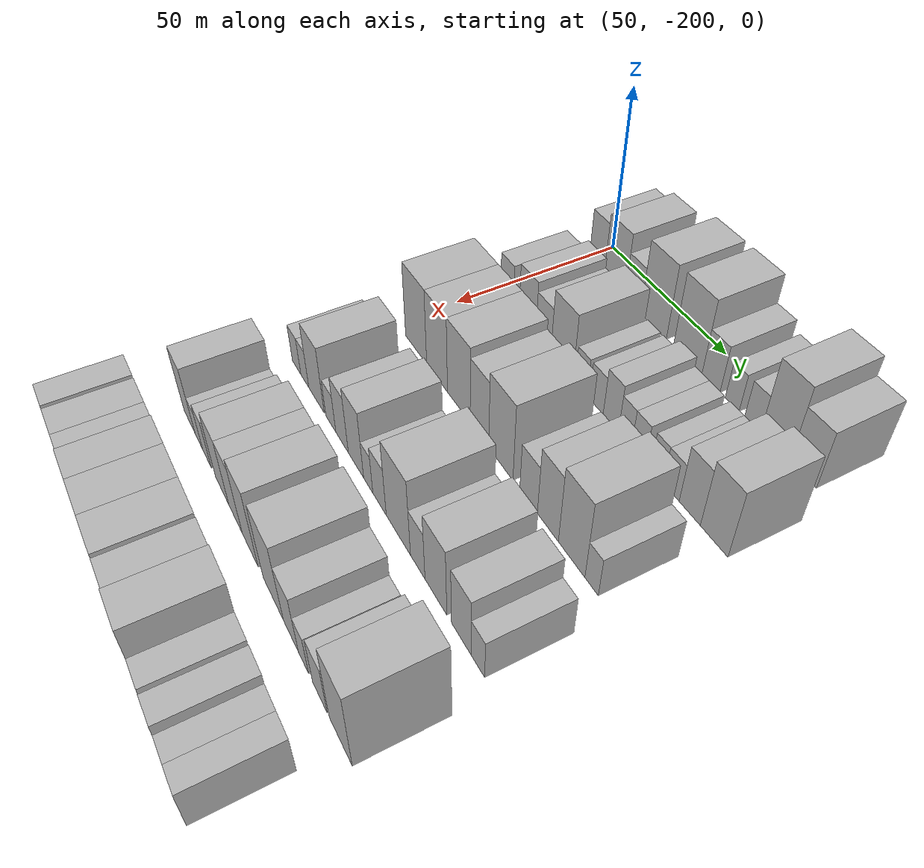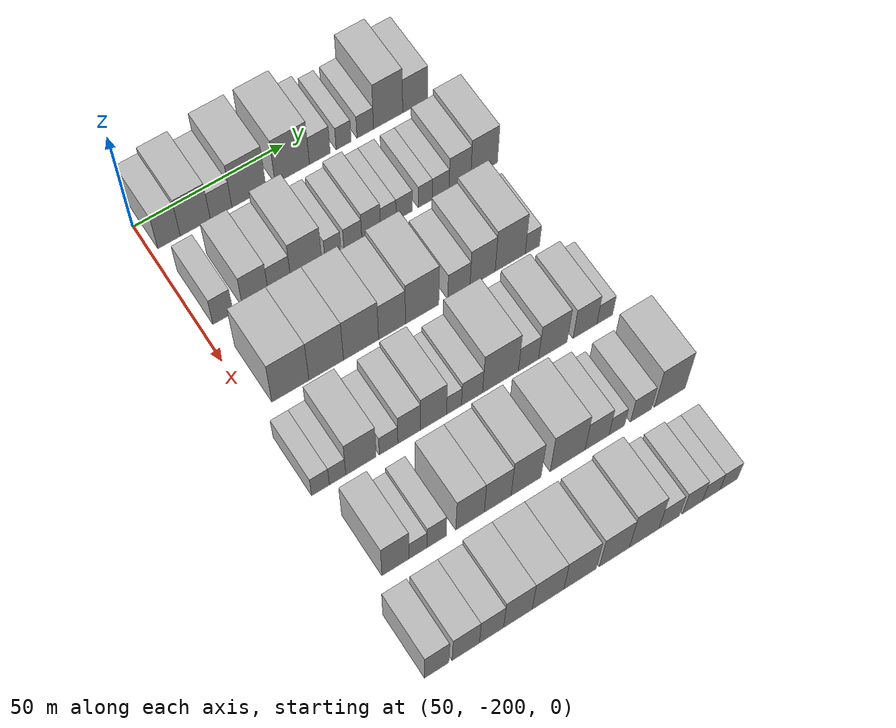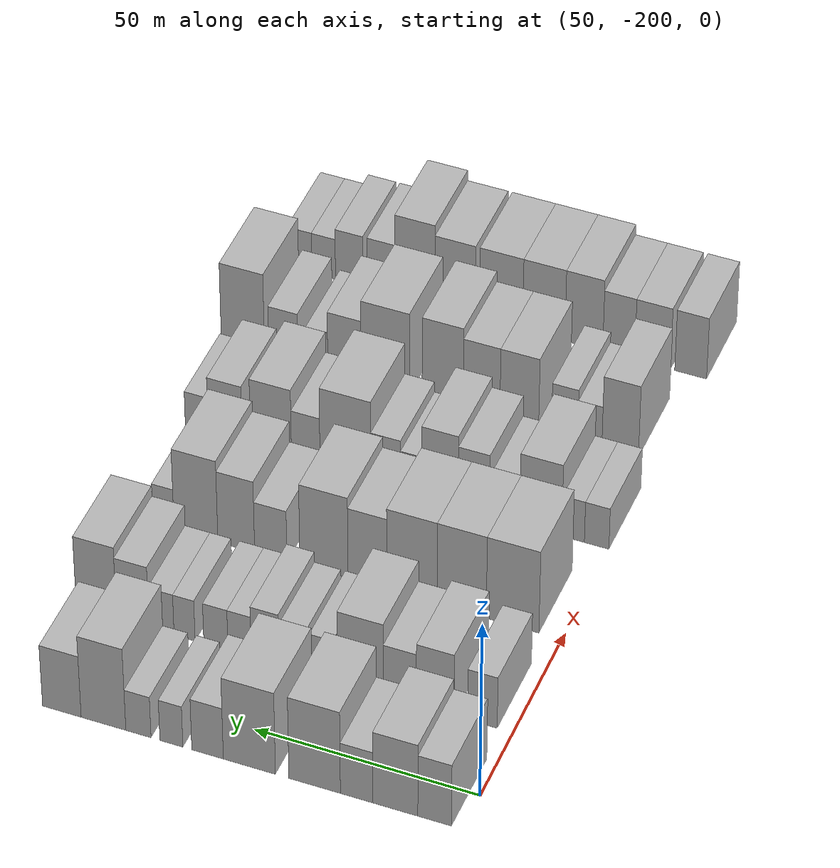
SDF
<sdf version="1.6">
 <world name="default">
  <model name="building_35">
   <static>1</static>
   <pose>50.0000 -193.9114 0 0.000000 0.000000 0.000000</pose>
   <link name="link">
    <pose>0 0 9.00 0 0 0</pose>
    <collision name="collision"><geometry><box><size>20.0000 7.3822 18.0000</size></box></geometry></collision>
    <visual name="visual">
     <cast_shadows>0</cast_shadows>
     <geometry><box><size>20.0000 7.3822 18.0000</size></box></geometry>
     <material>
      <script>
       <uri>model://HANNAS_wall/materials/scripts</uri>
       <uri>model://HANNAS_wall/materials/textures</uri>
       <name>vrc/HANNAS_wall</name>
      </script>
     </material>
    </visual>
   </link>
  </model>
  <model name="building_36">
   <static>1</static>
   <pose>50.0000 -185.2671 0 0.000000 0.000000 0.000000</pose>
   <link name="link">
    <pose>0 0 10.50 0 0 0</pose>
    <collision name="collision"><geometry><box><size>20.0000 9.9062 21.0000</size></box></geometry></collision>
    <visual name="visual">
     <cast_shadows>0</cast_shadows>
     <geometry><box><size>20.0000 9.9062 21.0000</size></box></geometry>
     <material>
      <script>
       <uri>model://HANNAS_wall/materials/scripts</uri>
       <uri>model://HANNAS_wall/materials/textures</uri>
       <name>vrc/HANNAS_wall</name>
      </script>
     </material>
    </visual>
   </link>
  </model>
  <model name="building_37">
   <static>1</static>
   <pose>50.0000 -176.7358 0 0.000000 0.000000 0.000000</pose>
   <link name="link">
    <pose>0 0 7.50 0 0 0</pose>
    <collision name="collision"><geometry><box><size>20.0000 7.1564 15.0000</size></box></geometry></collision>
    <visual name="visual">
     <cast_shadows>0</cast_shadows>
     <geometry><box><size>20.0000 7.1564 15.0000</size></box></geometry>
     <material>
      <script>
       <uri>model://HANNAS_wall/materials/scripts</uri>
       <uri>model://HANNAS_wall/materials/textures</uri>
       <name>vrc/HANNAS_wall</name>
      </script>
     </material>
    </visual>
   </link>
  </model>
  <model name="building_38">
   <static>1</static>
   <pose>50.0000 -167.4494 0 0.000000 0.000000 0.000000</pose>
   <link name="link">
    <pose>0 0 12.00 0 0 0</pose>
    <collision name="collision"><geometry><box><size>20.0000 11.4163 24.0000</size></box></geometry></collision>
    <visual name="visual">
     <cast_shadows>0</cast_shadows>
     <geometry><box><size>20.0000 11.4163 24.0000</size></box></geometry>
     <material>
      <script>
       <uri>model://HANNAS_wall/materials/scripts</uri>
       <uri>model://HANNAS_wall/materials/textures</uri>
       <name>vrc/HANNAS_wall</name>
      </script>
     </material>
    </visual>
   </link>
  </model>
  <model name="building_39">
   <static>1</static>
   <pose>50.0000 -152.9241 0 0.000000 0.000000 0.000000</pose>
   <link name="link">
    <pose>0 0 12.00 0 0 0</pose>
    <collision name="collision"><geometry><box><size>20.0000 11.6345 24.0000</size></box></geometry></collision>
    <visual name="visual">
     <cast_shadows>0</cast_shadows>
     <geometry><box><size>20.0000 11.6345 24.0000</size></box></geometry>
     <material>
      <script>
       <uri>model://HANNAS_wall/materials/scripts</uri>
       <uri>model://HANNAS_wall/materials/textures</uri>
       <name>vrc/HANNAS_wall</name>
      </script>
     </material>
    </visual>
   </link>
  </model>
  <model name="building_40">
   <static>1</static>
   <pose>50.0000 -143.5698 0 0.000000 0.000000 0.000000</pose>
   <link name="link">
    <pose>0 0 7.50 0 0 0</pose>
    <collision name="collision"><geometry><box><size>20.0000 7.0739 15.0000</size></box></geometry></collision>
    <visual name="visual">
     <cast_shadows>0</cast_shadows>
     <geometry><box><size>20.0000 7.0739 15.0000</size></box></geometry>
     <material>
      <script>
       <uri>model://HANNAS_wall/materials/scripts</uri>
       <uri>model://HANNAS_wall/materials/textures</uri>
       <name>vrc/HANNAS_wall</name>
      </script>
     </material>
    </visual>
   </link>
  </model>
  <model name="building_41">
   <static>1</static>
   <pose>50.0000 -135.4453 0 0.000000 0.000000 0.000000</pose>
   <link name="link">
    <pose>0 0 6.00 0 0 0</pose>
    <collision name="collision"><geometry><box><size>20.0000 5.1752 12.0000</size></box></geometry></collision>
    <visual name="visual">
     <cast_shadows>0</cast_shadows>
     <geometry><box><size>20.0000 5.1752 12.0000</size></box></geometry>
     <material>
      <script>
       <uri>model://HANNAS_wall/materials/scripts</uri>
       <uri>model://HANNAS_wall/materials/textures</uri>
       <name>vrc/HANNAS_wall</name>
      </script>
     </material>
    </visual>
   </link>
  </model>
  <model name="building_42">
   <static>1</static>
   <pose>50.0000 -128.0100 0 0.000000 0.000000 0.000000</pose>
   <link name="link">
    <pose>0 0 6.00 0 0 0</pose>
    <collision name="collision"><geometry><box><size>20.0000 5.6952 12.0000</size></box></geometry></collision>
    <visual name="visual">
     <cast_shadows>0</cast_shadows>
     <geometry><box><size>20.0000 5.6952 12.0000</size></box></geometry>
     <material>
      <script>
       <uri>model://HANNAS_wall/materials/scripts</uri>
       <uri>model://HANNAS_wall/materials/textures</uri>
       <name>vrc/HANNAS_wall</name>
      </script>
     </material>
    </visual>
   </link>
  </model>
  <model name="building_43">
   <static>1</static>
   <pose>50.0000 -120.1006 0 0.000000 0.000000 0.000000</pose>
   <link name="link">
    <pose>0 0 12.00 0 0 0</pose>
    <collision name="collision"><geometry><box><size>20.0000 10.1238 24.0000</size></box></geometry></collision>
    <visual name="visual">
     <cast_shadows>0</cast_shadows>
     <geometry><box><size>20.0000 10.1238 24.0000</size></box></geometry>
     <material>
      <script>
       <uri>model://HANNAS_wall/materials/scripts</uri>
       <uri>model://HANNAS_wall/materials/textures</uri>
       <name>vrc/HANNAS_wall</name>
      </script>
     </material>
    </visual>
   </link>
  </model>
  <model name="building_44">
   <static>1</static>
   <pose>50.0000 -110.6567 0 0.000000 0.000000 0.000000</pose>
   <link name="link">
    <pose>0 0 9.00 0 0 0</pose>
    <collision name="collision"><geometry><box><size>20.0000 8.7639 18.0000</size></box></geometry></collision>
    <visual name="visual">
     <cast_shadows>0</cast_shadows>
     <geometry><box><size>20.0000 8.7639 18.0000</size></box></geometry>
     <material>
      <script>
       <uri>model://HANNAS_wall/materials/scripts</uri>
       <uri>model://HANNAS_wall/materials/textures</uri>
       <name>vrc/HANNAS_wall</name>
      </script>
     </material>
    </visual>
   </link>
  </model>
  <model name="building_150">
   <static>1</static>
   <pose>79.0000 -193.1258 0 0.000000 0.000000 0.000000</pose>
   <link name="link">
    <pose>0 0 7.50 0 0 0</pose>
    <collision name="collision"><geometry><box><size>20.0000 6.6321 15.0000</size></box></geometry></collision>
    <visual name="visual">
     <cast_shadows>0</cast_shadows>
     <geometry><box><size>20.0000 6.6321 15.0000</size></box></geometry>
     <material>
      <script>
       <uri>model://HANNAS_wall/materials/scripts</uri>
       <uri>model://HANNAS_wall/materials/textures</uri>
       <name>vrc/HANNAS_wall</name>
      </script>
     </material>
    </visual>
   </link>
  </model>
  <model name="building_151">
   <static>1</static>
   <pose>79.0000 -182.6058 0 0.000000 0.000000 0.000000</pose>
   <link name="link">
    <pose>0 0 9.00 0 0 0</pose>
    <collision name="collision"><geometry><box><size>20.0000 8.4079 18.0000</size></box></geometry></collision>
    <visual name="visual">
     <cast_shadows>0</cast_shadows>
     <geometry><box><size>20.0000 8.4079 18.0000</size></box></geometry>
     <material>
      <script>
       <uri>model://HANNAS_wall/materials/scripts</uri>
       <uri>model://HANNAS_wall/materials/textures</uri>
       <name>vrc/HANNAS_wall</name>
      </script>
     </material>
    </visual>
   </link>
  </model>
  <model name="building_152">
   <static>1</static>
   <pose>79.0000 -174.7006 0 0.000000 0.000000 0.000000</pose>
   <link name="link">
    <pose>0 0 7.50 0 0 0</pose>
    <collision name="collision"><geometry><box><size>20.0000 7.4026 15.0000</size></box></geometry></collision>
    <visual name="visual">
     <cast_shadows>0</cast_shadows>
     <geometry><box><size>20.0000 7.4026 15.0000</size></box></geometry>
     <material>
      <script>
       <uri>model://HANNAS_wall/materials/scripts</uri>
       <uri>model://HANNAS_wall/materials/textures</uri>
       <name>vrc/HANNAS_wall</name>
      </script>
     </material>
    </visual>
   </link>
  </model>
  <model name="building_153">
   <static>1</static>
   <pose>79.0000 -165.8603 0 0.000000 0.000000 0.000000</pose>
   <link name="link">
    <pose>0 0 10.50 0 0 0</pose>
    <collision name="collision"><geometry><box><size>20.0000 10.2780 21.0000</size></box></geometry></collision>
    <visual name="visual">
     <cast_shadows>0</cast_shadows>
     <geometry><box><size>20.0000 10.2780 21.0000</size></box></geometry>
     <material>
      <script>
       <uri>model://HANNAS_wall/materials/scripts</uri>
       <uri>model://HANNAS_wall/materials/textures</uri>
       <name>vrc/HANNAS_wall</name>
      </script>
     </material>
    </visual>
   </link>
  </model>
  <model name="building_154">
   <static>1</static>
   <pose>79.0000 -157.0704 0 0.000000 0.000000 0.000000</pose>
   <link name="link">
    <pose>0 0 6.00 0 0 0</pose>
    <collision name="collision"><geometry><box><size>20.0000 5.3017 12.0000</size></box></geometry></collision>
    <visual name="visual">
     <cast_shadows>0</cast_shadows>
     <geometry><box><size>20.0000 5.3017 12.0000</size></box></geometry>
     <material>
      <script>
       <uri>model://HANNAS_wall/materials/scripts</uri>
       <uri>model://HANNAS_wall/materials/textures</uri>
       <name>vrc/HANNAS_wall</name>
      </script>
     </material>
    </visual>
   </link>
  </model>
  <model name="building_155">
   <static>1</static>
   <pose>79.0000 -150.4272 0 0.000000 0.000000 0.000000</pose>
   <link name="link">
    <pose>0 0 6.00 0 0 0</pose>
    <collision name="collision"><geometry><box><size>20.0000 5.9847 12.0000</size></box></geometry></collision>
    <visual name="visual">
     <cast_shadows>0</cast_shadows>
     <geometry><box><size>20.0000 5.9847 12.0000</size></box></geometry>
     <material>
      <script>
       <uri>model://HANNAS_wall/materials/scripts</uri>
       <uri>model://HANNAS_wall/materials/textures</uri>
       <name>vrc/HANNAS_wall</name>
      </script>
     </material>
    </visual>
   </link>
  </model>
  <model name="building_156">
   <static>1</static>
   <pose>79.0000 -144.2833 0 0.000000 0.000000 0.000000</pose>
   <link name="link">
    <pose>0 0 7.50 0 0 0</pose>
    <collision name="collision"><geometry><box><size>20.0000 6.3032 15.0000</size></box></geometry></collision>
    <visual name="visual">
     <cast_shadows>0</cast_shadows>
     <geometry><box><size>20.0000 6.3032 15.0000</size></box></geometry>
     <material>
      <script>
       <uri>model://HANNAS_wall/materials/scripts</uri>
       <uri>model://HANNAS_wall/materials/textures</uri>
       <name>vrc/HANNAS_wall</name>
      </script>
     </material>
    </visual>
   </link>
  </model>
  <model name="building_157">
   <static>1</static>
   <pose>79.0000 -138.4934 0 0.000000 0.000000 0.000000</pose>
   <link name="link">
    <pose>0 0 6.00 0 0 0</pose>
    <collision name="collision"><geometry><box><size>20.0000 5.2766 12.0000</size></box></geometry></collision>
    <visual name="visual">
     <cast_shadows>0</cast_shadows>
     <geometry><box><size>20.0000 5.2766 12.0000</size></box></geometry>
     <material>
      <script>
       <uri>model://HANNAS_wall/materials/scripts</uri>
       <uri>model://HANNAS_wall/materials/textures</uri>
       <name>vrc/HANNAS_wall</name>
      </script>
     </material>
    </visual>
   </link>
  </model>
  <model name="building_158">
   <static>1</static>
   <pose>79.0000 -133.0994 0 0.000000 0.000000 0.000000</pose>
   <link name="link">
    <pose>0 0 6.00 0 0 0</pose>
    <collision name="collision"><geometry><box><size>20.0000 5.5113 12.0000</size></box></geometry></collision>
    <visual name="visual">
     <cast_shadows>0</cast_shadows>
     <geometry><box><size>20.0000 5.5113 12.0000</size></box></geometry>
     <material>
      <script>
       <uri>model://HANNAS_wall/materials/scripts</uri>
       <uri>model://HANNAS_wall/materials/textures</uri>
       <name>vrc/HANNAS_wall</name>
      </script>
     </material>
    </visual>
   </link>
  </model>
  <model name="building_159">
   <static>1</static>
   <pose>79.0000 -125.9368 0 0.000000 0.000000 0.000000</pose>
   <link name="link">
    <pose>0 0 6.00 0 0 0</pose>
    <collision name="collision"><geometry><box><size>20.0000 4.8140 12.0000</size></box></geometry></collision>
    <visual name="visual">
     <cast_shadows>0</cast_shadows>
     <geometry><box><size>20.0000 4.8140 12.0000</size></box></geometry>
     <material>
      <script>
       <uri>model://HANNAS_wall/materials/scripts</uri>
       <uri>model://HANNAS_wall/materials/textures</uri>
       <name>vrc/HANNAS_wall</name>
      </script>
     </material>
    </visual>
   </link>
  </model>
  <model name="building_160">
   <static>1</static>
   <pose>79.0000 -120.6565 0 0.000000 0.000000 0.000000</pose>
   <link name="link">
    <pose>0 0 6.00 0 0 0</pose>
    <collision name="collision"><geometry><box><size>20.0000 5.7468 12.0000</size></box></geometry></collision>
    <visual name="visual">
     <cast_shadows>0</cast_shadows>
     <geometry><box><size>20.0000 5.7468 12.0000</size></box></geometry>
     <material>
      <script>
       <uri>model://HANNAS_wall/materials/scripts</uri>
       <uri>model://HANNAS_wall/materials/textures</uri>
       <name>vrc/HANNAS_wall</name>
      </script>
     </material>
    </visual>
   </link>
  </model>
  <model name="building_161">
   <static>1</static>
   <pose>79.0000 -114.0428 0 0.000000 0.000000 0.000000</pose>
   <link name="link">
    <pose>0 0 9.00 0 0 0</pose>
    <collision name="collision"><geometry><box><size>20.0000 7.4806 18.0000</size></box></geometry></collision>
    <visual name="visual">
     <cast_shadows>0</cast_shadows>
     <geometry><box><size>20.0000 7.4806 18.0000</size></box></geometry>
     <material>
      <script>
       <uri>model://HANNAS_wall/materials/scripts</uri>
       <uri>model://HANNAS_wall/materials/textures</uri>
       <name>vrc/HANNAS_wall</name>
      </script>
     </material>
    </visual>
   </link>
  </model>
  <model name="building_162">
   <static>1</static>
   <pose>79.0000 -105.6607 0 0.000000 0.000000 0.000000</pose>
   <link name="link">
    <pose>0 0 10.50 0 0 0</pose>
    <collision name="collision"><geometry><box><size>20.0000 9.2836 21.0000</size></box></geometry></collision>
    <visual name="visual">
     <cast_shadows>0</cast_shadows>
     <geometry><box><size>20.0000 9.2836 21.0000</size></box></geometry>
     <material>
      <script>
       <uri>model://HANNAS_wall/materials/scripts</uri>
       <uri>model://HANNAS_wall/materials/textures</uri>
       <name>vrc/HANNAS_wall</name>
      </script>
     </material>
    </visual>
   </link>
  </model>
  <model name="building_268">
   <static>1</static>
   <pose>108.0000 -188.7640 0 0.000000 0.000000 0.000000</pose>
   <link name="link">
    <pose>0 0 12.00 0 0 0</pose>
    <collision name="collision"><geometry><box><size>20.0000 11.9013 24.0000</size></box></geometry></collision>
    <visual name="visual">
     <cast_shadows>0</cast_shadows>
     <geometry><box><size>20.0000 11.9013 24.0000</size></box></geometry>
     <material>
      <script>
       <uri>model://HANNAS_wall/materials/scripts</uri>
       <uri>model://HANNAS_wall/materials/textures</uri>
       <name>vrc/HANNAS_wall</name>
      </script>
     </material>
    </visual>
   </link>
  </model>
  <model name="building_269">
   <static>1</static>
   <pose>108.0000 -177.2226 0 0.000000 0.000000 0.000000</pose>
   <link name="link">
    <pose>0 0 12.00 0 0 0</pose>
    <collision name="collision"><geometry><box><size>20.0000 11.1816 24.0000</size></box></geometry></collision>
    <visual name="visual">
     <cast_shadows>0</cast_shadows>
     <geometry><box><size>20.0000 11.1816 24.0000</size></box></geometry>
     <material>
      <script>
       <uri>model://HANNAS_wall/materials/scripts</uri>
       <uri>model://HANNAS_wall/materials/textures</uri>
       <name>vrc/HANNAS_wall</name>
      </script>
     </material>
    </visual>
   </link>
  </model>
  <model name="building_270">
   <static>1</static>
   <pose>108.0000 -165.9001 0 0.000000 0.000000 0.000000</pose>
   <link name="link">
    <pose>0 0 12.00 0 0 0</pose>
    <collision name="collision"><geometry><box><size>20.0000 11.4634 24.0000</size></box></geometry></collision>
    <visual name="visual">
     <cast_shadows>0</cast_shadows>
     <geometry><box><size>20.0000 11.4634 24.0000</size></box></geometry>
     <material>
      <script>
       <uri>model://HANNAS_wall/materials/scripts</uri>
       <uri>model://HANNAS_wall/materials/textures</uri>
       <name>vrc/HANNAS_wall</name>
      </script>
     </material>
    </visual>
   </link>
  </model>
  <model name="building_271">
   <static>1</static>
   <pose>108.0000 -155.7331 0 0.000000 0.000000 0.000000</pose>
   <link name="link">
    <pose>0 0 10.50 0 0 0</pose>
    <collision name="collision"><geometry><box><size>20.0000 8.8707 21.0000</size></box></geometry></collision>
    <visual name="visual">
     <cast_shadows>0</cast_shadows>
     <geometry><box><size>20.0000 8.8707 21.0000</size></box></geometry>
     <material>
      <script>
       <uri>model://HANNAS_wall/materials/scripts</uri>
       <uri>model://HANNAS_wall/materials/textures</uri>
       <name>vrc/HANNAS_wall</name>
      </script>
     </material>
    </visual>
   </link>
  </model>
  <model name="building_272">
   <static>1</static>
   <pose>108.0000 -145.7656 0 0.000000 0.000000 0.000000</pose>
   <link name="link">
    <pose>0 0 12.00 0 0 0</pose>
    <collision name="collision"><geometry><box><size>20.0000 11.0643 24.0000</size></box></geometry></collision>
    <visual name="visual">
     <cast_shadows>0</cast_shadows>
     <geometry><box><size>20.0000 11.0643 24.0000</size></box></geometry>
     <material>
      <script>
       <uri>model://HANNAS_wall/materials/scripts</uri>
       <uri>model://HANNAS_wall/materials/textures</uri>
       <name>vrc/HANNAS_wall</name>
      </script>
     </material>
    </visual>
   </link>
  </model>
  <model name="building_273">
   <static>1</static>
   <pose>108.0000 -133.4966 0 0.000000 0.000000 0.000000</pose>
   <link name="link">
    <pose>0 0 7.50 0 0 0</pose>
    <collision name="collision"><geometry><box><size>20.0000 7.4737 15.0000</size></box></geometry></collision>
    <visual name="visual">
     <cast_shadows>0</cast_shadows>
     <geometry><box><size>20.0000 7.4737 15.0000</size></box></geometry>
     <material>
      <script>
       <uri>model://HANNAS_wall/materials/scripts</uri>
       <uri>model://HANNAS_wall/materials/textures</uri>
       <name>vrc/HANNAS_wall</name>
      </script>
     </material>
    </visual>
   </link>
  </model>
  <model name="building_274">
   <static>1</static>
   <pose>108.0000 -125.4956 0 0.000000 0.000000 0.000000</pose>
   <link name="link">
    <pose>0 0 10.50 0 0 0</pose>
    <collision name="collision"><geometry><box><size>20.0000 8.5285 21.0000</size></box></geometry></collision>
    <visual name="visual">
     <cast_shadows>0</cast_shadows>
     <geometry><box><size>20.0000 8.5285 21.0000</size></box></geometry>
     <material>
      <script>
       <uri>model://HANNAS_wall/materials/scripts</uri>
       <uri>model://HANNAS_wall/materials/textures</uri>
       <name>vrc/HANNAS_wall</name>
      </script>
     </material>
    </visual>
   </link>
  </model>
  <model name="building_275">
   <static>1</static>
   <pose>108.0000 -116.1210 0 0.000000 0.000000 0.000000</pose>
   <link name="link">
    <pose>0 0 12.00 0 0 0</pose>
    <collision name="collision"><geometry><box><size>20.0000 10.2206 24.0000</size></box></geometry></collision>
    <visual name="visual">
     <cast_shadows>0</cast_shadows>
     <geometry><box><size>20.0000 10.2206 24.0000</size></box></geometry>
     <material>
      <script>
       <uri>model://HANNAS_wall/materials/scripts</uri>
       <uri>model://HANNAS_wall/materials/textures</uri>
       <name>vrc/HANNAS_wall</name>
      </script>
     </material>
    </visual>
   </link>
  </model>
  <model name="building_276">
   <static>1</static>
   <pose>108.0000 -108.5557 0 0.000000 0.000000 0.000000</pose>
   <link name="link">
    <pose>0 0 6.00 0 0 0</pose>
    <collision name="collision"><geometry><box><size>20.0000 4.9100 12.0000</size></box></geometry></collision>
    <visual name="visual">
     <cast_shadows>0</cast_shadows>
     <geometry><box><size>20.0000 4.9100 12.0000</size></box></geometry>
     <material>
      <script>
       <uri>model://HANNAS_wall/materials/scripts</uri>
       <uri>model://HANNAS_wall/materials/textures</uri>
       <name>vrc/HANNAS_wall</name>
      </script>
     </material>
    </visual>
   </link>
  </model>
  <model name="building_383">
   <static>1</static>
   <pose>137.0000 -196.9503 0 0.000000 0.000000 0.000000</pose>
   <link name="link">
    <pose>0 0 6.00 0 0 0</pose>
    <collision name="collision"><geometry><box><size>20.0000 5.5994 12.0000</size></box></geometry></collision>
    <visual name="visual">
     <cast_shadows>0</cast_shadows>
     <geometry><box><size>20.0000 5.5994 12.0000</size></box></geometry>
     <material>
      <script>
       <uri>model://HANNAS_wall/materials/scripts</uri>
       <uri>model://HANNAS_wall/materials/textures</uri>
       <name>vrc/HANNAS_wall</name>
      </script>
     </material>
    </visual>
   </link>
  </model>
  <model name="building_384">
   <static>1</static>
   <pose>137.0000 -191.5575 0 0.000000 0.000000 0.000000</pose>
   <link name="link">
    <pose>0 0 6.00 0 0 0</pose>
    <collision name="collision"><geometry><box><size>20.0000 5.1861 12.0000</size></box></geometry></collision>
    <visual name="visual">
     <cast_shadows>0</cast_shadows>
     <geometry><box><size>20.0000 5.1861 12.0000</size></box></geometry>
     <material>
      <script>
       <uri>model://HANNAS_wall/materials/scripts</uri>
       <uri>model://HANNAS_wall/materials/textures</uri>
       <name>vrc/HANNAS_wall</name>
      </script>
     </material>
    </visual>
   </link>
  </model>
  <model name="building_385">
   <static>1</static>
   <pose>137.0000 -184.1395 0 0.000000 0.000000 0.000000</pose>
   <link name="link">
    <pose>0 0 10.50 0 0 0</pose>
    <collision name="collision"><geometry><box><size>20.0000 9.6499 21.0000</size></box></geometry></collision>
    <visual name="visual">
     <cast_shadows>0</cast_shadows>
     <geometry><box><size>20.0000 9.6499 21.0000</size></box></geometry>
     <material>
      <script>
       <uri>model://HANNAS_wall/materials/scripts</uri>
       <uri>model://HANNAS_wall/materials/textures</uri>
       <name>vrc/HANNAS_wall</name>
      </script>
     </material>
    </visual>
   </link>
  </model>
  <model name="building_386">
   <static>1</static>
   <pose>137.0000 -175.3382 0 0.000000 0.000000 0.000000</pose>
   <link name="link">
    <pose>0 0 6.00 0 0 0</pose>
    <collision name="collision"><geometry><box><size>20.0000 5.9528 12.0000</size></box></geometry></collision>
    <visual name="visual">
     <cast_shadows>0</cast_shadows>
     <geometry><box><size>20.0000 5.9528 12.0000</size></box></geometry>
     <material>
      <script>
       <uri>model://HANNAS_wall/materials/scripts</uri>
       <uri>model://HANNAS_wall/materials/textures</uri>
       <name>vrc/HANNAS_wall</name>
      </script>
     </material>
    </visual>
   </link>
  </model>
  <model name="building_387">
   <static>1</static>
   <pose>137.0000 -168.7397 0 0.000000 0.000000 0.000000</pose>
   <link name="link">
    <pose>0 0 9.00 0 0 0</pose>
    <collision name="collision"><geometry><box><size>20.0000 7.2443 18.0000</size></box></geometry></collision>
    <visual name="visual">
     <cast_shadows>0</cast_shadows>
     <geometry><box><size>20.0000 7.2443 18.0000</size></box></geometry>
     <material>
      <script>
       <uri>model://HANNAS_wall/materials/scripts</uri>
       <uri>model://HANNAS_wall/materials/textures</uri>
       <name>vrc/HANNAS_wall</name>
      </script>
     </material>
    </visual>
   </link>
  </model>
  <model name="building_388">
   <static>1</static>
   <pose>137.0000 -160.8903 0 0.000000 0.000000 0.000000</pose>
   <link name="link">
    <pose>0 0 10.50 0 0 0</pose>
    <collision name="collision"><geometry><box><size>20.0000 8.4545 21.0000</size></box></geometry></collision>
    <visual name="visual">
     <cast_shadows>0</cast_shadows>
     <geometry><box><size>20.0000 8.4545 21.0000</size></box></geometry>
     <material>
      <script>
       <uri>model://HANNAS_wall/materials/scripts</uri>
       <uri>model://HANNAS_wall/materials/textures</uri>
       <name>vrc/HANNAS_wall</name>
      </script>
     </material>
    </visual>
   </link>
  </model>
  <model name="building_389">
   <static>1</static>
   <pose>137.0000 -154.2182 0 0.000000 0.000000 0.000000</pose>
   <link name="link">
    <pose>0 0 6.00 0 0 0</pose>
    <collision name="collision"><geometry><box><size>20.0000 4.8896 12.0000</size></box></geometry></collision>
    <visual name="visual">
     <cast_shadows>0</cast_shadows>
     <geometry><box><size>20.0000 4.8896 12.0000</size></box></geometry>
     <material>
      <script>
       <uri>model://HANNAS_wall/materials/scripts</uri>
       <uri>model://HANNAS_wall/materials/textures</uri>
       <name>vrc/HANNAS_wall</name>
      </script>
     </material>
    </visual>
   </link>
  </model>
  <model name="building_390">
   <static>1</static>
   <pose>137.0000 -148.3148 0 0.000000 0.000000 0.000000</pose>
   <link name="link">
    <pose>0 0 7.50 0 0 0</pose>
    <collision name="collision"><geometry><box><size>20.0000 6.9173 15.0000</size></box></geometry></collision>
    <visual name="visual">
     <cast_shadows>0</cast_shadows>
     <geometry><box><size>20.0000 6.9173 15.0000</size></box></geometry>
     <material>
      <script>
       <uri>model://HANNAS_wall/materials/scripts</uri>
       <uri>model://HANNAS_wall/materials/textures</uri>
       <name>vrc/HANNAS_wall</name>
      </script>
     </material>
    </visual>
   </link>
  </model>
  <model name="building_391">
   <static>1</static>
   <pose>137.0000 -138.9206 0 0.000000 0.000000 0.000000</pose>
   <link name="link">
    <pose>0 0 12.00 0 0 0</pose>
    <collision name="collision"><geometry><box><size>20.0000 11.8710 24.0000</size></box></geometry></collision>
    <visual name="visual">
     <cast_shadows>0</cast_shadows>
     <geometry><box><size>20.0000 11.8710 24.0000</size></box></geometry>
     <material>
      <script>
       <uri>model://HANNAS_wall/materials/scripts</uri>
       <uri>model://HANNAS_wall/materials/textures</uri>
       <name>vrc/HANNAS_wall</name>
      </script>
     </material>
    </visual>
   </link>
  </model>
  <model name="building_392">
   <static>1</static>
   <pose>137.0000 -129.6305 0 0.000000 0.000000 0.000000</pose>
   <link name="link">
    <pose>0 0 7.50 0 0 0</pose>
    <collision name="collision"><geometry><box><size>20.0000 6.7092 15.0000</size></box></geometry></collision>
    <visual name="visual">
     <cast_shadows>0</cast_shadows>
     <geometry><box><size>20.0000 6.7092 15.0000</size></box></geometry>
     <material>
      <script>
       <uri>model://HANNAS_wall/materials/scripts</uri>
       <uri>model://HANNAS_wall/materials/textures</uri>
       <name>vrc/HANNAS_wall</name>
      </script>
     </material>
    </visual>
   </link>
  </model>
  <model name="building_393">
   <static>1</static>
   <pose>137.0000 -121.4674 0 0.000000 0.000000 0.000000</pose>
   <link name="link">
    <pose>0 0 10.50 0 0 0</pose>
    <collision name="collision"><geometry><box><size>20.0000 9.6171 21.0000</size></box></geometry></collision>
    <visual name="visual">
     <cast_shadows>0</cast_shadows>
     <geometry><box><size>20.0000 9.6171 21.0000</size></box></geometry>
     <material>
      <script>
       <uri>model://HANNAS_wall/materials/scripts</uri>
       <uri>model://HANNAS_wall/materials/textures</uri>
       <name>vrc/HANNAS_wall</name>
      </script>
     </material>
    </visual>
   </link>
  </model>
  <model name="building_394">
   <static>1</static>
   <pose>137.0000 -110.6386 0 0.000000 0.000000 0.000000</pose>
   <link name="link">
    <pose>0 0 9.00 0 0 0</pose>
    <collision name="collision"><geometry><box><size>20.0000 8.0405 18.0000</size></box></geometry></collision>
    <visual name="visual">
     <cast_shadows>0</cast_shadows>
     <geometry><box><size>20.0000 8.0405 18.0000</size></box></geometry>
     <material>
      <script>
       <uri>model://HANNAS_wall/materials/scripts</uri>
       <uri>model://HANNAS_wall/materials/textures</uri>
       <name>vrc/HANNAS_wall</name>
      </script>
     </material>
    </visual>
   </link>
  </model>
  <model name="building_395">
   <static>1</static>
   <pose>137.0000 -103.9181 0 0.000000 0.000000 0.000000</pose>
   <link name="link">
    <pose>0 0 6.00 0 0 0</pose>
    <collision name="collision"><geometry><box><size>20.0000 5.4006 12.0000</size></box></geometry></collision>
    <visual name="visual">
     <cast_shadows>0</cast_shadows>
     <geometry><box><size>20.0000 5.4006 12.0000</size></box></geometry>
     <material>
      <script>
       <uri>model://HANNAS_wall/materials/scripts</uri>
       <uri>model://HANNAS_wall/materials/textures</uri>
       <name>vrc/HANNAS_wall</name>
      </script>
     </material>
    </visual>
   </link>
  </model>
  <model name="building_493">
   <static>1</static>
   <pose>166.0000 -191.6757 0 0.000000 0.000000 0.000000</pose>
   <link name="link">
    <pose>0 0 10.50 0 0 0</pose>
    <collision name="collision"><geometry><box><size>20.0000 8.4810 21.0000</size></box></geometry></collision>
    <visual name="visual">
     <cast_shadows>0</cast_shadows>
     <geometry><box><size>20.0000 8.4810 21.0000</size></box></geometry>
     <material>
      <script>
       <uri>model://HANNAS_wall/materials/scripts</uri>
       <uri>model://HANNAS_wall/materials/textures</uri>
       <name>vrc/HANNAS_wall</name>
      </script>
     </material>
    </visual>
   </link>
  </model>
  <model name="building_494">
   <static>1</static>
   <pose>166.0000 -184.6100 0 0.000000 0.000000 0.000000</pose>
   <link name="link">
    <pose>0 0 6.00 0 0 0</pose>
    <collision name="collision"><geometry><box><size>20.0000 5.6506 12.0000</size></box></geometry></collision>
    <visual name="visual">
     <cast_shadows>0</cast_shadows>
     <geometry><box><size>20.0000 5.6506 12.0000</size></box></geometry>
     <material>
      <script>
       <uri>model://HANNAS_wall/materials/scripts</uri>
       <uri>model://HANNAS_wall/materials/textures</uri>
       <name>vrc/HANNAS_wall</name>
      </script>
     </material>
    </visual>
   </link>
  </model>
  <model name="building_495">
   <static>1</static>
   <pose>166.0000 -178.7395 0 0.000000 0.000000 0.000000</pose>
   <link name="link">
    <pose>0 0 7.50 0 0 0</pose>
    <collision name="collision"><geometry><box><size>20.0000 6.0904 15.0000</size></box></geometry></collision>
    <visual name="visual">
     <cast_shadows>0</cast_shadows>
     <geometry><box><size>20.0000 6.0904 15.0000</size></box></geometry>
     <material>
      <script>
       <uri>model://HANNAS_wall/materials/scripts</uri>
       <uri>model://HANNAS_wall/materials/textures</uri>
       <name>vrc/HANNAS_wall</name>
      </script>
     </material>
    </visual>
   </link>
  </model>
  <model name="building_496">
   <static>1</static>
   <pose>166.0000 -168.1574 0 0.000000 0.000000 0.000000</pose>
   <link name="link">
    <pose>0 0 10.50 0 0 0</pose>
    <collision name="collision"><geometry><box><size>20.0000 9.0736 21.0000</size></box></geometry></collision>
    <visual name="visual">
     <cast_shadows>0</cast_shadows>
     <geometry><box><size>20.0000 9.0736 21.0000</size></box></geometry>
     <material>
      <script>
       <uri>model://HANNAS_wall/materials/scripts</uri>
       <uri>model://HANNAS_wall/materials/textures</uri>
       <name>vrc/HANNAS_wall</name>
      </script>
     </material>
    </visual>
   </link>
  </model>
  <model name="building_497">
   <static>1</static>
   <pose>166.0000 -159.3204 0 0.000000 0.000000 0.000000</pose>
   <link name="link">
    <pose>0 0 10.50 0 0 0</pose>
    <collision name="collision"><geometry><box><size>20.0000 8.6004 21.0000</size></box></geometry></collision>
    <visual name="visual">
     <cast_shadows>0</cast_shadows>
     <geometry><box><size>20.0000 8.6004 21.0000</size></box></geometry>
     <material>
      <script>
       <uri>model://HANNAS_wall/materials/scripts</uri>
       <uri>model://HANNAS_wall/materials/textures</uri>
       <name>vrc/HANNAS_wall</name>
      </script>
     </material>
    </visual>
   </link>
  </model>
  <model name="building_498">
   <static>1</static>
   <pose>166.0000 -150.1675 0 0.000000 0.000000 0.000000</pose>
   <link name="link">
    <pose>0 0 12.00 0 0 0</pose>
    <collision name="collision"><geometry><box><size>20.0000 9.7052 24.0000</size></box></geometry></collision>
    <visual name="visual">
     <cast_shadows>0</cast_shadows>
     <geometry><box><size>20.0000 9.7052 24.0000</size></box></geometry>
     <material>
      <script>
       <uri>model://HANNAS_wall/materials/scripts</uri>
       <uri>model://HANNAS_wall/materials/textures</uri>
       <name>vrc/HANNAS_wall</name>
      </script>
     </material>
    </visual>
   </link>
  </model>
  <model name="building_499">
   <static>1</static>
   <pose>166.0000 -136.6039 0 0.000000 0.000000 0.000000</pose>
   <link name="link">
    <pose>0 0 12.00 0 0 0</pose>
    <collision name="collision"><geometry><box><size>20.0000 11.4220 24.0000</size></box></geometry></collision>
    <visual name="visual">
     <cast_shadows>0</cast_shadows>
     <geometry><box><size>20.0000 11.4220 24.0000</size></box></geometry>
     <material>
      <script>
       <uri>model://HANNAS_wall/materials/scripts</uri>
       <uri>model://HANNAS_wall/materials/textures</uri>
       <name>vrc/HANNAS_wall</name>
      </script>
     </material>
    </visual>
   </link>
  </model>
  <model name="building_500">
   <static>1</static>
   <pose>166.0000 -126.9171 0 0.000000 0.000000 0.000000</pose>
   <link name="link">
    <pose>0 0 9.00 0 0 0</pose>
    <collision name="collision"><geometry><box><size>20.0000 7.9516 18.0000</size></box></geometry></collision>
    <visual name="visual">
     <cast_shadows>0</cast_shadows>
     <geometry><box><size>20.0000 7.9516 18.0000</size></box></geometry>
     <material>
      <script>
       <uri>model://HANNAS_wall/materials/scripts</uri>
       <uri>model://HANNAS_wall/materials/textures</uri>
       <name>vrc/HANNAS_wall</name>
      </script>
     </material>
    </visual>
   </link>
  </model>
  <model name="building_501">
   <static>1</static>
   <pose>166.0000 -120.3710 0 0.000000 0.000000 0.000000</pose>
   <link name="link">
    <pose>0 0 6.00 0 0 0</pose>
    <collision name="collision"><geometry><box><size>20.0000 5.1406 12.0000</size></box></geometry></collision>
    <visual name="visual">
     <cast_shadows>0</cast_shadows>
     <geometry><box><size>20.0000 5.1406 12.0000</size></box></geometry>
     <material>
      <script>
       <uri>model://HANNAS_wall/materials/scripts</uri>
       <uri>model://HANNAS_wall/materials/textures</uri>
       <name>vrc/HANNAS_wall</name>
      </script>
     </material>
    </visual>
   </link>
  </model>
  <model name="building_502">
   <static>1</static>
   <pose>166.0000 -112.2999 0 0.000000 0.000000 0.000000</pose>
   <link name="link">
    <pose>0 0 7.50 0 0 0</pose>
    <collision name="collision"><geometry><box><size>20.0000 7.0015 15.0000</size></box></geometry></collision>
    <visual name="visual">
     <cast_shadows>0</cast_shadows>
     <geometry><box><size>20.0000 7.0015 15.0000</size></box></geometry>
     <material>
      <script>
       <uri>model://HANNAS_wall/materials/scripts</uri>
       <uri>model://HANNAS_wall/materials/textures</uri>
       <name>vrc/HANNAS_wall</name>
      </script>
     </material>
    </visual>
   </link>
  </model>
  <model name="building_503">
   <static>1</static>
   <pose>166.0000 -102.6062 0 0.000000 0.000000 0.000000</pose>
   <link name="link">
    <pose>0 0 12.00 0 0 0</pose>
    <collision name="collision"><geometry><box><size>20.0000 10.3859 24.0000</size></box></geometry></collision>
    <visual name="visual">
     <cast_shadows>0</cast_shadows>
     <geometry><box><size>20.0000 10.3859 24.0000</size></box></geometry>
     <material>
      <script>
       <uri>model://HANNAS_wall/materials/scripts</uri>
       <uri>model://HANNAS_wall/materials/textures</uri>
       <name>vrc/HANNAS_wall</name>
      </script>
     </material>
    </visual>
   </link>
  </model>
  <model name="building_605">
   <static>1</static>
   <pose>195.0000 -197.6304 0 0.000000 0.000000 0.000000</pose>
   <link name="link">
    <pose>0 0 9.00 0 0 0</pose>
    <collision name="collision"><geometry><box><size>20.0000 7.4541 18.0000</size></box></geometry></collision>
    <visual name="visual">
     <cast_shadows>0</cast_shadows>
     <geometry><box><size>20.0000 7.4541 18.0000</size></box></geometry>
     <material>
      <script>
       <uri>model://HANNAS_wall/materials/scripts</uri>
       <uri>model://HANNAS_wall/materials/textures</uri>
       <name>vrc/HANNAS_wall</name>
      </script>
     </material>
    </visual>
   </link>
  </model>
  <model name="building_606">
   <static>1</static>
   <pose>195.0000 -188.6867 0 0.000000 0.000000 0.000000</pose>
   <link name="link">
    <pose>0 0 9.00 0 0 0</pose>
    <collision name="collision"><geometry><box><size>20.0000 8.4333 18.0000</size></box></geometry></collision>
    <visual name="visual">
     <cast_shadows>0</cast_shadows>
     <geometry><box><size>20.0000 8.4333 18.0000</size></box></geometry>
     <material>
      <script>
       <uri>model://HANNAS_wall/materials/scripts</uri>
       <uri>model://HANNAS_wall/materials/textures</uri>
       <name>vrc/HANNAS_wall</name>
      </script>
     </material>
    </visual>
   </link>
  </model>
  <model name="building_607">
   <static>1</static>
   <pose>195.0000 -180.7070 0 0.000000 0.000000 0.000000</pose>
   <link name="link">
    <pose>0 0 9.00 0 0 0</pose>
    <collision name="collision"><geometry><box><size>20.0000 7.5260 18.0000</size></box></geometry></collision>
    <visual name="visual">
     <cast_shadows>0</cast_shadows>
     <geometry><box><size>20.0000 7.5260 18.0000</size></box></geometry>
     <material>
      <script>
       <uri>model://HANNAS_wall/materials/scripts</uri>
       <uri>model://HANNAS_wall/materials/textures</uri>
       <name>vrc/HANNAS_wall</name>
      </script>
     </material>
    </visual>
   </link>
  </model>
  <model name="building_608">
   <static>1</static>
   <pose>195.0000 -172.4597 0 0.000000 0.000000 0.000000</pose>
   <link name="link">
    <pose>0 0 10.50 0 0 0</pose>
    <collision name="collision"><geometry><box><size>20.0000 8.9687 21.0000</size></box></geometry></collision>
    <visual name="visual">
     <cast_shadows>0</cast_shadows>
     <geometry><box><size>20.0000 8.9687 21.0000</size></box></geometry>
     <material>
      <script>
       <uri>model://HANNAS_wall/materials/scripts</uri>
       <uri>model://HANNAS_wall/materials/textures</uri>
       <name>vrc/HANNAS_wall</name>
      </script>
     </material>
    </visual>
   </link>
  </model>
  <model name="building_609">
   <static>1</static>
   <pose>195.0000 -162.9523 0 0.000000 0.000000 0.000000</pose>
   <link name="link">
    <pose>0 0 10.50 0 0 0</pose>
    <collision name="collision"><geometry><box><size>20.0000 10.0462 21.0000</size></box></geometry></collision>
    <visual name="visual">
     <cast_shadows>0</cast_shadows>
     <geometry><box><size>20.0000 10.0462 21.0000</size></box></geometry>
     <material>
      <script>
       <uri>model://HANNAS_wall/materials/scripts</uri>
       <uri>model://HANNAS_wall/materials/textures</uri>
       <name>vrc/HANNAS_wall</name>
      </script>
     </material>
    </visual>
   </link>
  </model>
  <model name="building_610">
   <static>1</static>
   <pose>195.0000 -152.7654 0 0.000000 0.000000 0.000000</pose>
   <link name="link">
    <pose>0 0 10.50 0 0 0</pose>
    <collision name="collision"><geometry><box><size>20.0000 10.3277 21.0000</size></box></geometry></collision>
    <visual name="visual">
     <cast_shadows>0</cast_shadows>
     <geometry><box><size>20.0000 10.3277 21.0000</size></box></geometry>
     <material>
      <script>
       <uri>model://HANNAS_wall/materials/scripts</uri>
       <uri>model://HANNAS_wall/materials/textures</uri>
       <name>vrc/HANNAS_wall</name>
      </script>
     </material>
    </visual>
   </link>
  </model>
  <model name="building_611">
   <static>1</static>
   <pose>195.0000 -141.7539 0 0.000000 0.000000 0.000000</pose>
   <link name="link">
    <pose>0 0 10.50 0 0 0</pose>
    <collision name="collision"><geometry><box><size>20.0000 9.6952 21.0000</size></box></geometry></collision>
    <visual name="visual">
     <cast_shadows>0</cast_shadows>
     <geometry><box><size>20.0000 9.6952 21.0000</size></box></geometry>
     <material>
      <script>
       <uri>model://HANNAS_wall/materials/scripts</uri>
       <uri>model://HANNAS_wall/materials/textures</uri>
       <name>vrc/HANNAS_wall</name>
      </script>
     </material>
    </visual>
   </link>
  </model>
  <model name="building_612">
   <static>1</static>
   <pose>195.0000 -132.1029 0 0.000000 0.000000 0.000000</pose>
   <link name="link">
    <pose>0 0 12.00 0 0 0</pose>
    <collision name="collision"><geometry><box><size>20.0000 9.6068 24.0000</size></box></geometry></collision>
    <visual name="visual">
     <cast_shadows>0</cast_shadows>
     <geometry><box><size>20.0000 9.6068 24.0000</size></box></geometry>
     <material>
      <script>
       <uri>model://HANNAS_wall/materials/scripts</uri>
       <uri>model://HANNAS_wall/materials/textures</uri>
       <name>vrc/HANNAS_wall</name>
      </script>
     </material>
    </visual>
   </link>
  </model>
  <model name="building_613">
   <static>1</static>
   <pose>195.0000 -123.9452 0 0.000000 0.000000 0.000000</pose>
   <link name="link">
    <pose>0 0 7.50 0 0 0</pose>
    <collision name="collision"><geometry><box><size>20.0000 6.7086 15.0000</size></box></geometry></collision>
    <visual name="visual">
     <cast_shadows>0</cast_shadows>
     <geometry><box><size>20.0000 6.7086 15.0000</size></box></geometry>
     <material>
      <script>
       <uri>model://HANNAS_wall/materials/scripts</uri>
       <uri>model://HANNAS_wall/materials/textures</uri>
       <name>vrc/HANNAS_wall</name>
      </script>
     </material>
    </visual>
   </link>
  </model>
  <model name="building_614">
   <static>1</static>
   <pose>195.0000 -116.2651 0 0.000000 0.000000 0.000000</pose>
   <link name="link">
    <pose>0 0 7.50 0 0 0</pose>
    <collision name="collision"><geometry><box><size>20.0000 6.6517 15.0000</size></box></geometry></collision>
    <visual name="visual">
     <cast_shadows>0</cast_shadows>
     <geometry><box><size>20.0000 6.6517 15.0000</size></box></geometry>
     <material>
      <script>
       <uri>model://HANNAS_wall/materials/scripts</uri>
       <uri>model://HANNAS_wall/materials/textures</uri>
       <name>vrc/HANNAS_wall</name>
      </script>
     </material>
    </visual>
   </link>
  </model>
  <model name="building_615">
   <static>1</static>
   <pose>195.0000 -110.0569 0 0.000000 0.000000 0.000000</pose>
   <link name="link">
    <pose>0 0 6.00 0 0 0</pose>
    <collision name="collision"><geometry><box><size>20.0000 5.7647 12.0000</size></box></geometry></collision>
    <visual name="visual">
     <cast_shadows>0</cast_shadows>
     <geometry><box><size>20.0000 5.7647 12.0000</size></box></geometry>
     <material>
      <script>
       <uri>model://HANNAS_wall/materials/scripts</uri>
       <uri>model://HANNAS_wall/materials/textures</uri>
       <name>vrc/HANNAS_wall</name>
      </script>
     </material>
    </visual>
   </link>
  </model>
  <model name="building_616">
   <static>1</static>
   <pose>195.0000 -104.2283 0 0.000000 0.000000 0.000000</pose>
   <link name="link">
    <pose>0 0 6.00 0 0 0</pose>
    <collision name="collision"><geometry><box><size>20.0000 5.8926 12.0000</size></box></geometry></collision>
    <visual name="visual">
     <cast_shadows>0</cast_shadows>
     <geometry><box><size>20.0000 5.8926 12.0000</size></box></geometry>
     <material>
      <script>
       <uri>model://HANNAS_wall/materials/scripts</uri>
       <uri>model://HANNAS_wall/materials/textures</uri>
       <name>vrc/HANNAS_wall</name>
      </script>
     </material>
    </visual>
   </link>
  </model>
 </world>
</sdf>
